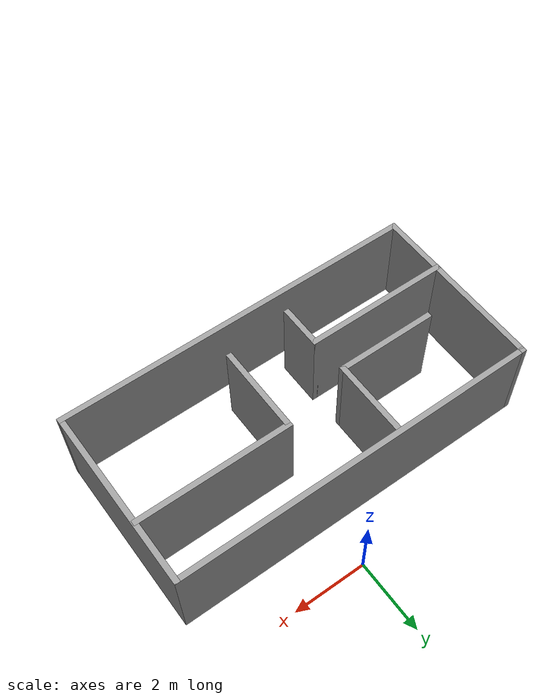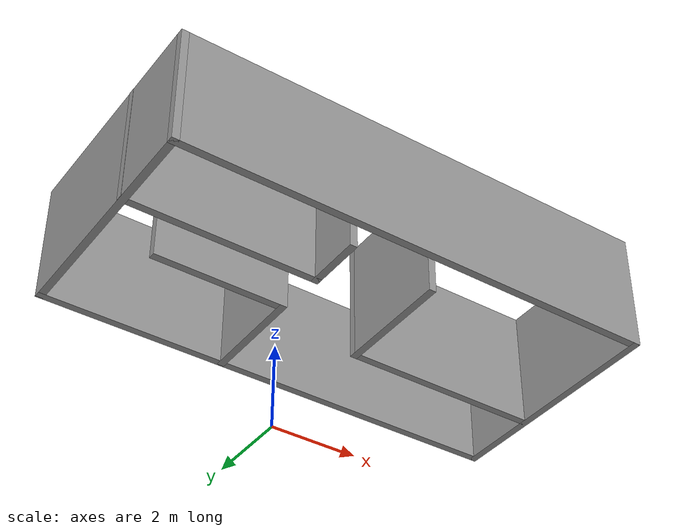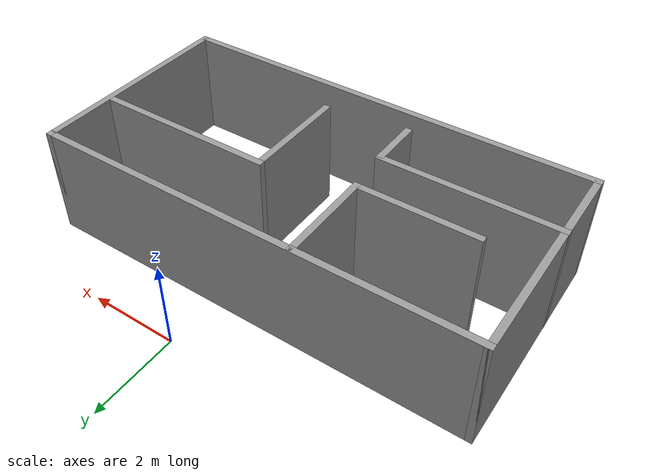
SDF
<?xml version='1.0'?>
<sdf version='1.7'>
  <model name='room'>
    <pose>-0.807273 -3.1225 0 0 -0 0</pose>
    <link name='Wall_1'>
      <collision name='Wall_1_Collision'>
        <geometry>
          <box>
            <size>10 0.15 2.5</size>
          </box>
        </geometry>
        <pose>0 0 1.25 0 -0 0</pose>
      </collision>
      <visual name='Wall_1_Visual'>
        <pose>0 0 1.25 0 -0 0</pose>
        <geometry>
          <box>
            <size>10 0.15 2.5</size>
          </box>
        </geometry>
        <material>
          <script>
            <uri>file://media/materials/scripts/gazebo.material</uri>
            <name>Gazebo/Grey</name>
          </script>
          <ambient>1 1 1 1</ambient>
        </material>
        <meta>
          <layer>0</layer>
        </meta>
      </visual>
      <pose>0.002273 1.8025 0 0 -0 0</pose>
    </link>
    <link name='Wall_10'>
      <collision name='Wall_10_Collision'>
        <geometry>
          <box>
            <size>1.25 0.15 2.5</size>
          </box>
        </geometry>
        <pose>0 0 1.25 0 -0 0</pose>
      </collision>
      <visual name='Wall_10_Visual'>
        <pose>0 0 1.25 0 -0 0</pose>
        <geometry>
          <box>
            <size>1.25 0.15 2.5</size>
          </box>
        </geometry>
        <material>
          <script>
            <uri>file://media/materials/scripts/gazebo.material</uri>
            <name>Gazebo/Grey</name>
          </script>
          <ambient>1 1 1 1</ambient>
        </material>
        <meta>
          <layer>0</layer>
        </meta>
      </visual>
      <pose>-1.07727 -1.88827 0 0 -0 -1.5708</pose>
    </link>
    <link name='Wall_12'>
      <collision name='Wall_12_Collision'>
        <geometry>
          <box>
            <size>4.25 0.15 2.5</size>
          </box>
        </geometry>
        <pose>0 0 1.25 0 -0 0</pose>
      </collision>
      <visual name='Wall_12_Visual'>
        <pose>0 0 1.25 0 -0 0</pose>
        <geometry>
          <box>
            <size>4.25 0.15 2.5</size>
          </box>
        </geometry>
        <material>
          <script>
            <uri>file://media/materials/scripts/gazebo.material</uri>
            <name>Gazebo/Grey</name>
          </script>
          <ambient>1 1 1 1</ambient>
        </material>
        <meta>
          <layer>0</layer>
        </meta>
      </visual>
      <pose>2.84758 0.15219 0 0 -0 3.14159</pose>
    </link>
    <link name='Wall_13'>
      <collision name='Wall_13_Collision'>
        <geometry>
          <box>
            <size>2.5 0.15 2.5</size>
          </box>
        </geometry>
        <pose>0 0 1.25 0 -0 0</pose>
      </collision>
      <visual name='Wall_13_Visual'>
        <pose>0 0 1.25 0 -0 0</pose>
        <geometry>
          <box>
            <size>2.5 0.15 2.5</size>
          </box>
        </geometry>
        <material>
          <script>
            <uri>file://media/materials/scripts/gazebo.material</uri>
            <name>Gazebo/Grey</name>
          </script>
          <ambient>1 1 1 1</ambient>
        </material>
        <meta>
          <layer>0</layer>
        </meta>
      </visual>
      <pose>0.79758 -1.02281 0 0 -0 -1.5708</pose>
    </link>
    <link name='Wall_2'>
      <collision name='Wall_2_Collision'>
        <geometry>
          <box>
            <size>5 0.15 2.5</size>
          </box>
        </geometry>
        <pose>0 0 1.25 0 -0 0</pose>
      </collision>
      <visual name='Wall_2_Visual'>
        <pose>0 0 1.25 0 -0 0</pose>
        <geometry>
          <box>
            <size>5 0.15 2.5</size>
          </box>
        </geometry>
        <material>
          <script>
            <uri>file://media/materials/scripts/gazebo.material</uri>
            <name>Gazebo/Grey</name>
          </script>
          <ambient>1 1 1 1</ambient>
        </material>
        <meta>
          <layer>0</layer>
        </meta>
      </visual>
      <pose>4.92727 -0.6225 0 0 -0 -1.5708</pose>
    </link>
    <link name='Wall_3'>
      <collision name='Wall_3_Collision'>
        <geometry>
          <box>
            <size>10 0.15 2.5</size>
          </box>
        </geometry>
        <pose>0 0 1.25 0 -0 0</pose>
      </collision>
      <visual name='Wall_3_Visual'>
        <pose>0 0 1.25 0 -0 0</pose>
        <geometry>
          <box>
            <size>10 0.15 2.5</size>
          </box>
        </geometry>
        <material>
          <script>
            <uri>file://media/materials/scripts/gazebo.material</uri>
            <name>Gazebo/Grey</name>
          </script>
          <ambient>1 1 1 1</ambient>
        </material>
        <meta>
          <layer>0</layer>
        </meta>
      </visual>
      <pose>0.002273 -3.0475 0 0 -0 3.14159</pose>
    </link>
    <link name='Wall_4'>
      <collision name='Wall_4_Collision'>
        <geometry>
          <box>
            <size>5 0.15 2.5</size>
          </box>
        </geometry>
        <pose>0 0 1.25 0 -0 0</pose>
      </collision>
      <visual name='Wall_4_Visual'>
        <pose>0 0 1.25 0 -0 0</pose>
        <geometry>
          <box>
            <size>5 0.15 2.5</size>
          </box>
        </geometry>
        <material>
          <script>
            <uri>file://media/materials/scripts/gazebo.material</uri>
            <name>Gazebo/Grey</name>
          </script>
          <ambient>1 1 1 1</ambient>
        </material>
        <meta>
          <layer>0</layer>
        </meta>
      </visual>
      <pose>-4.92273 -0.6225 0 0 -0 1.5708</pose>
    </link>
    <link name='Wall_6'>
      <collision name='Wall_6_Collision'>
        <geometry>
          <box>
            <size>2.25 0.15 2.5</size>
          </box>
        </geometry>
        <pose>0 0 1.25 0 -0 0</pose>
      </collision>
      <visual name='Wall_6_Visual'>
        <pose>0 0 1.25 0 -0 0</pose>
        <geometry>
          <box>
            <size>2.25 0.15 2.5</size>
          </box>
        </geometry>
        <material>
          <script>
            <uri>file://media/materials/scripts/gazebo.material</uri>
            <name>Gazebo/Grey</name>
          </script>
          <ambient>1 1 1 1</ambient>
        </material>
        <meta>
          <layer>0</layer>
        </meta>
      </visual>
      <pose>-1.1555 0.729526 0 0 -0 -1.5708</pose>
    </link>
    <link name='Wall_7'>
      <collision name='Wall_7_Collision'>
        <geometry>
          <box>
            <size>2.75 0.15 2.5</size>
          </box>
        </geometry>
        <pose>0 0 1.25 0 -0 0</pose>
      </collision>
      <visual name='Wall_7_Visual'>
        <pose>0 0 1.25 0 -0 0</pose>
        <geometry>
          <box>
            <size>2.75 0.15 2.5</size>
          </box>
        </geometry>
        <material>
          <script>
            <uri>file://media/materials/scripts/gazebo.material</uri>
            <name>Gazebo/Grey</name>
          </script>
          <ambient>1 1 1 1</ambient>
        </material>
        <meta>
          <layer>0</layer>
        </meta>
      </visual>
      <pose>-2.4555 -0.320474 0 0 -0 3.14159</pose>
    </link>
    <link name='Wall_9'>
      <collision name='Wall_9_Collision'>
        <geometry>
          <box>
            <size>4 0.15 2.5</size>
          </box>
        </geometry>
        <pose>0 0 1.25 0 -0 0</pose>
      </collision>
      <visual name='Wall_9_Visual'>
        <pose>0 0 1.25 0 -0 0</pose>
        <geometry>
          <box>
            <size>4 0.15 2.5</size>
          </box>
        </geometry>
        <material>
          <script>
            <uri>file://media/materials/scripts/gazebo.material</uri>
            <name>Gazebo/Grey</name>
          </script>
          <ambient>1 1 1 1</ambient>
        </material>
        <meta>
          <layer>0</layer>
        </meta>
      </visual>
      <pose>-3.00227 -1.33827 0 0 -0 0</pose>
    </link>
    <static>1</static>
  </model>
</sdf>
